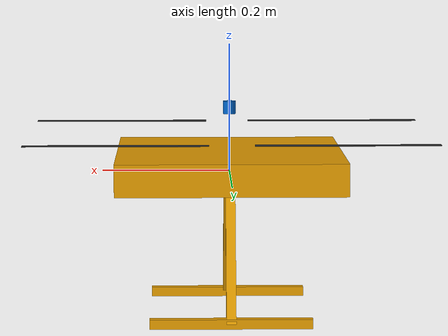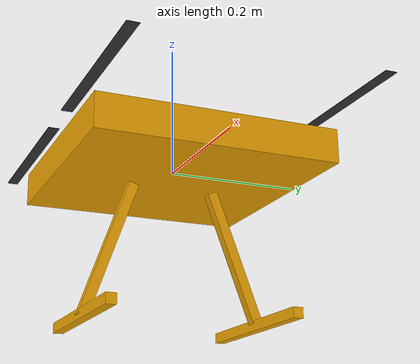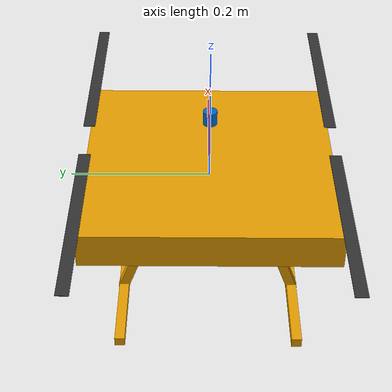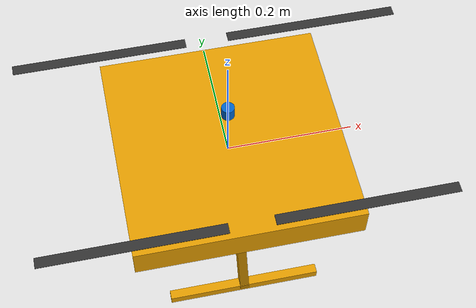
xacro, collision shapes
<?xml version="1.0"?>
<robot xmlns:xacro="http://www.ros.org/wiki/xacro" name="x500">

  <!-- Properties -->
  <xacro:property name="base_mass" value="2.0"/>
  <xacro:property name="rotor_mass" value="0.016076923076923075"/>

  <!-- Base footprint link -->
  <link name="body">
    <inertial>
      <mass value="${base_mass}"/>
      <inertia ixx="0.02166666666666667" ixy="0" ixz="0"
               iyy="0.02166666666666667" iyz="0" izz="0.04000000000000001"/>
    </inertial>

    <visual>
      <origin xyz="0 0 0.025" rpy="0 0 3.141592654"/>
      <geometry>
        <mesh filename="package://drone_in_warehouse/models/x500/meshes/NXP-HGD-CF.dae" scale="1 1 1"/>
      </geometry>
    </visual>

    <collision>
      <origin xyz="0 0 0.007" rpy="0 0 0"/>
      <geometry>
        <box size="0.35355339059327373 0.35355339059327373 0.05"/>
      </geometry>
    </collision>

    <collision>
      <origin xyz="0 -0.098 -0.123" rpy="-0.35 0 0"/>
      <geometry>
        <box size="0.015 0.015 0.21"/>
      </geometry>
    </collision>

    <collision>
      <origin xyz="0 0.098 -0.123" rpy="0.35 0 0"/>
      <geometry>
        <box size="0.015 0.015 0.21"/>
      </geometry>
    </collision>

    <collision>
      <origin xyz="0 -0.132 -0.2195" rpy="0 0 0"/>
      <geometry>
        <box size="0.25 0.015 0.015"/>
      </geometry>
    </collision>

    <collision>
      <origin xyz="0 0.132 -0.2195" rpy="0 0 0"/>
      <geometry>
        <box size="0.25 0.015 0.015"/>
      </geometry>
    </collision>
  </link>

  <!-- Rotor 0 (CCW) -->
  <link name="rotor_0">
    <inertial>
      <mass value="${rotor_mass}"/>
      <inertia ixx="3.8464910483993325e-07" ixy="0" ixz="0"
               iyy="2.6115851691700804e-05" iyz="0" izz="2.649858234714004e-05"/>
    </inertial>

    <visual>
      <origin xyz="-0.022 -0.14638461538461536 -0.016" rpy="0 0 0"/>
      <geometry>
        <mesh filename="package://drone_in_warehouse/models/x500/meshes/1345_prop_ccw.stl" scale="0.8461538461538461 0.8461538461538461 0.8461538461538461"/>
      </geometry>
      <material name="DarkGrey"/>
    </visual>

    <visual>
      <origin xyz="0 0 -0.032" rpy="0 0 0"/>
      <geometry>
        <mesh filename="package://drone_in_warehouse/models/x500/meshes/5010Bell.dae" scale="1 1 1"/>
      </geometry>
    </visual>

    <collision>
      <origin xyz="0 0 0" rpy="0 0 0"/>
      <geometry>
        <box size="0.2792307692307692 0.016923076923076923 0.0008461538461538462"/>
      </geometry>
    </collision>
  </link>

  <!-- Rotor 1 (CCW) -->
  <link name="rotor_1">
    <inertial>
      <mass value="${rotor_mass}"/>
      <inertia ixx="3.8464910483993325e-07" ixy="0" ixz="0"
               iyy="2.6115851691700804e-05" iyz="0" izz="2.649858234714004e-05"/>
    </inertial>

    <visual>
      <origin xyz="-0.022 -0.14638461538461536 -0.016" rpy="0 0 0"/>
      <geometry>
        <mesh filename="package://drone_in_warehouse/models/x500/meshes/1345_prop_ccw.stl" scale="0.8461538461538461 0.8461538461538461 0.8461538461538461"/>
      </geometry>
      <material name="DarkGrey"/>
    </visual>

    <visual>
      <origin xyz="0 0 -0.032" rpy="0 0 0"/>
      <geometry>
        <mesh filename="package://drone_in_warehouse/models/x500/meshes/5010Bell.dae" scale="1 1 1"/>
      </geometry>
    </visual>

    <collision>
      <origin xyz="0 0 0" rpy="0 0 0"/>
      <geometry>
        <box size="0.2792307692307692 0.016923076923076923 0.0008461538461538462"/>
      </geometry>
    </collision>
  </link>

  <!-- Rotor 2 (CW) -->
  <link name="rotor_2">
    <inertial>
      <mass value="${rotor_mass}"/>
      <inertia ixx="3.8464910483993325e-07" ixy="0" ixz="0"
               iyy="2.6115851691700804e-05" iyz="0" izz="2.649858234714004e-05"/>
    </inertial>

    <visual>
      <origin xyz="-0.022 -0.14638461538461536 -0.016" rpy="0 0 0"/>
      <geometry>
        <mesh filename="package://drone_in_warehouse/models/x500/meshes/1345_prop_cw.stl" scale="0.8461538461538461 0.8461538461538461 0.8461538461538461"/>
      </geometry>
      <material name="DarkGrey"/>
    </visual>

    <visual>
      <origin xyz="0 0 -0.032" rpy="0 0 0"/>
      <geometry>
        <mesh filename="package://drone_in_warehouse/models/x500/meshes/5010Bell.dae" scale="1 1 1"/>
      </geometry>
    </visual>

    <collision>
      <origin xyz="0 0 0" rpy="0 0 0"/>
      <geometry>
        <box size="0.2792307692307692 0.016923076923076923 0.0008461538461538462"/>
      </geometry>
    </collision>
  </link>

  <!-- Rotor 3 (CW) -->
  <link name="rotor_3">
    <inertial>
      <mass value="${rotor_mass}"/>
      <inertia ixx="3.8464910483993325e-07" ixy="0" ixz="0"
               iyy="2.6115851691700804e-05" iyz="0" izz="2.649858234714004e-05"/>
    </inertial>

    <visual>
      <origin xyz="-0.022 -0.14638461538461536 -0.016" rpy="0 0 0"/>
      <geometry>
        <mesh filename="package://drone_in_warehouse/models/x500/meshes/1345_prop_cw.stl" scale="0.8461538461538461 0.8461538461538461 0.8461538461538461"/>
      </geometry>
      <material name="DarkGrey"/>
    </visual>

    <visual>
      <origin xyz="0 0 -0.032" rpy="0 0 0"/>
      <geometry>
        <mesh filename="package://drone_in_warehouse/models/x500/meshes/5010Bell.dae" scale="1 1 1"/>
      </geometry>
    </visual>

    <collision>
      <origin xyz="0 0 0" rpy="0 0 0"/>
      <geometry>
        <box size="0.2792307692307692 0.016923076923076923 0.0008461538461538462"/>
      </geometry>
    </collision>
  </link>

  <!-- Joints -->
  <joint name="rotor_0_joint" type="continuous">
    <parent link="body"/>
    <child link="rotor_0"/>
    <origin xyz="0.174 -0.174 0.06" rpy="0 0 0"/>
    <axis xyz="0 0 1"/>
    <limit lower="-1e+16" upper="1e+16" effort="100" velocity="1000"/>
  </joint>

  <joint name="rotor_1_joint" type="continuous">
    <parent link="body"/>
    <child link="rotor_1"/>
    <origin xyz="-0.174 0.174 0.06" rpy="0 0 0"/>
    <axis xyz="0 0 1"/>
    <limit lower="-1e+16" upper="1e+16" effort="100" velocity="1000"/>
  </joint>

  <joint name="rotor_2_joint" type="continuous">
    <parent link="body"/>
    <child link="rotor_2"/>
    <origin xyz="0.174 0.174 0.06" rpy="0 0 0"/>
    <axis xyz="0 0 1"/>
    <limit lower="-1e+16" upper="1e+16" effort="100" velocity="1000"/>
  </joint>

  <joint name="rotor_3_joint" type="continuous">
    <parent link="body"/>
    <child link="rotor_3"/>
    <origin xyz="-0.174 -0.174 0.06" rpy="0 0 0"/>
    <axis xyz="0 0 1"/>
    <limit lower="-1e+16" upper="1e+16" effort="100" velocity="1000"/>
  </joint>

    <!-- 多距離感測器連結 -->
  <link name="lidar">
    <visual>
      <origin xyz="0 0 0" rpy="0 0 0"/>
      <geometry>
        <cylinder radius="0.01" length="0.02"/>
      </geometry>
      <material name="sensor_material">
        <color rgba="0.0 0.4 0.8 0.9"/>
      </material>
    </visual>
    <collision>
      <origin xyz="0 0 0" rpy="0 0 0"/>
      <geometry>
        <cylinder radius="0.01" length="0.02"/>
      </geometry>
    </collision>
  </link>

  <link name="imu">
    <visual>
      <origin xyz="0 0 0" rpy="0 0 0"/>
      <geometry>
        <cylinder radius="0.01" length="0.01"/>
      </geometry>
      <material name="sensor_material">
        <color rgba="0.8 0.8 0.8 1.0"/>
      </material>
    </visual>
    <collision>
      <origin xyz="0 0 0" rpy="0 0 0"/>
      <geometry>
        <cylinder radius="0.01" length="0.01"/>
      </geometry>
    </collision>
  </link>

    <!-- imu感測器關節 -->
  <joint name="imu_joint" type="fixed">
    <parent link="body"/>
    <child link="imu"/>
    <origin xyz="0 0 0.02" rpy="0 0 0"/>
  </joint>

  <!-- multiranger感測器關節 -->
  <joint name="multiranger_joint" type="fixed">
    <parent link="body"/>
    <child link="lidar"/>
    <origin xyz="0 0 0.1" rpy="0 0 0"/>
  </joint>

  <!-- Materials -->
  <material name="DarkGrey">
    <color rgba="0.2 0.2 0.2 1"/>
  </material>

</robot>
